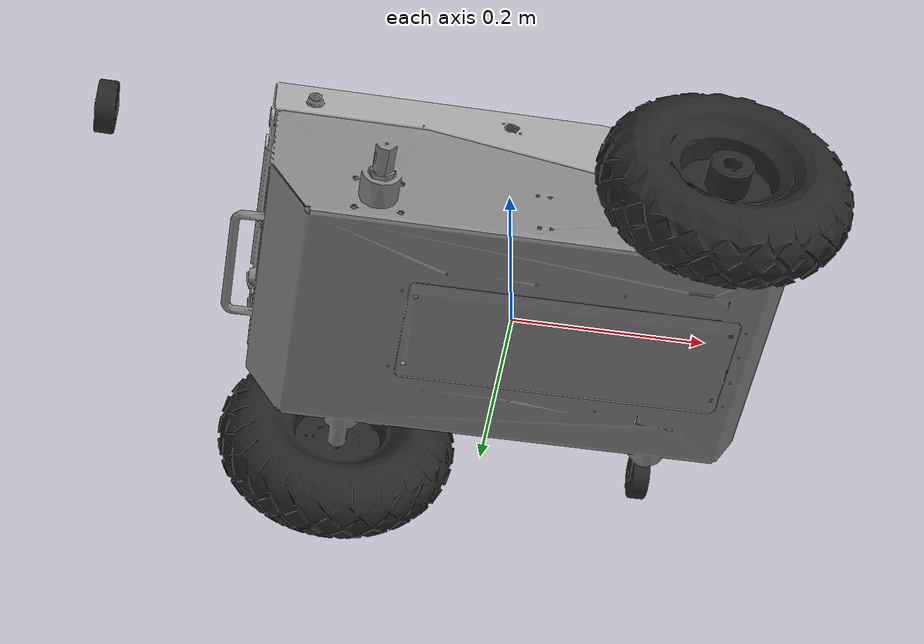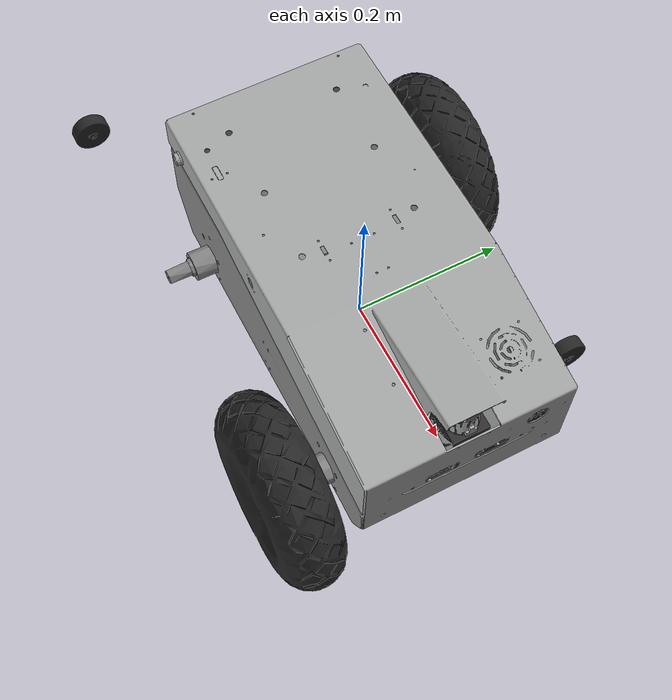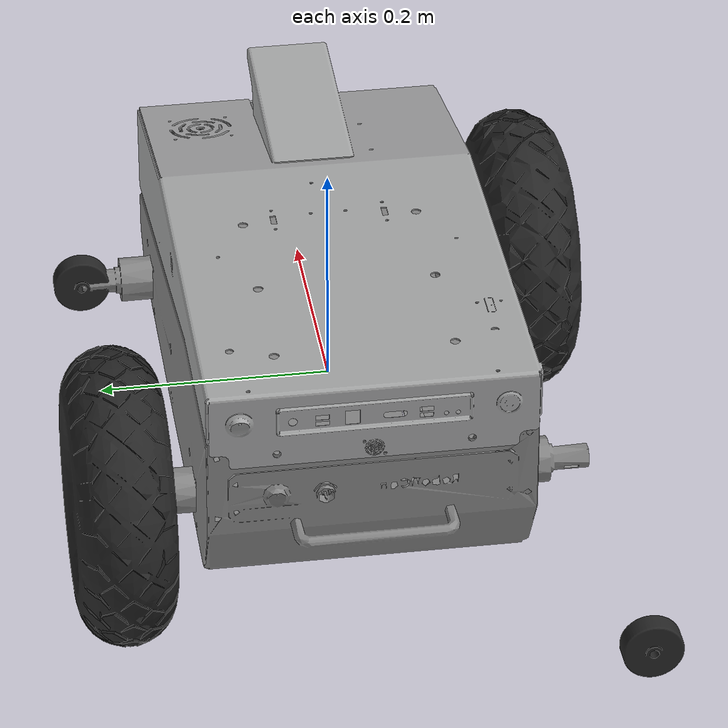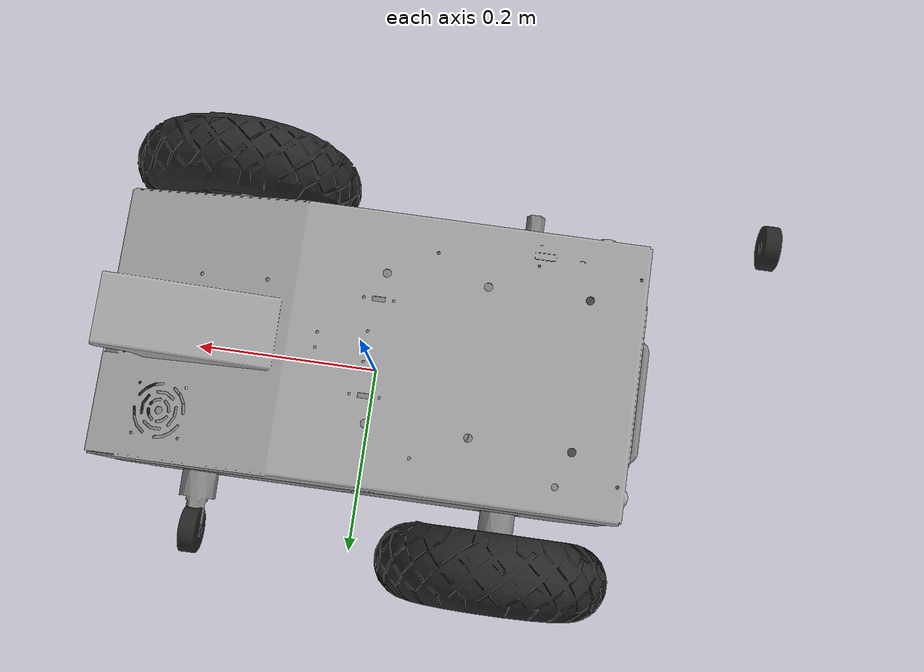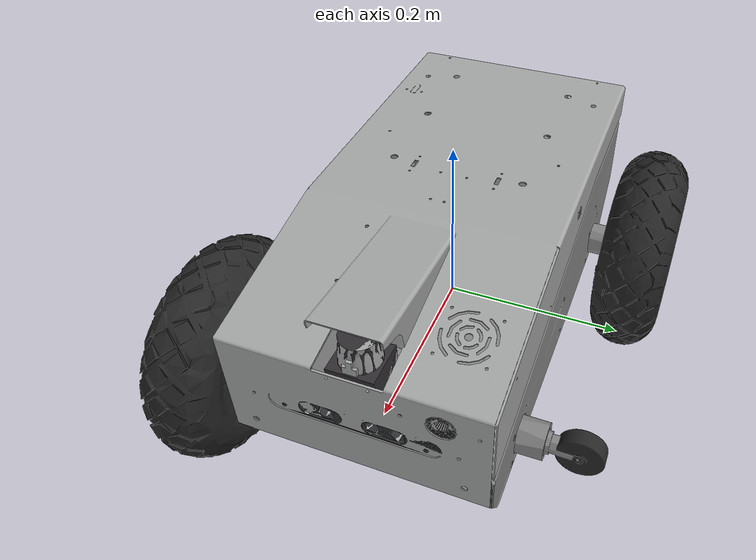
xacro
<?xml version="1.0"?>
<robot xmlns:xacro="http://www.ros.org/wiki/xacro" name="komodo">

	<!-- Load all the links  -->
	<xacro:include filename="$(find robotican_description)/komodo/komodo_base_links/komodo_rover.xacro" />
	<xacro:include filename="$(find robotican_description)/komodo/komodo_base_links/Front_Camera_link.xacro" />
	<xacro:include filename="$(find robotican_description)/komodo/komodo_base_links/Asus_Camera_link.xacro" />
	<xacro:include filename="$(find robotican_description)/komodo/komodo_base_links/Laser_link.xacro" />
	<xacro:include filename="$(find robotican_description)/komodo/komodo_base_links/Left_URF_link.xacro" />
	<xacro:include filename="$(find robotican_description)/komodo/komodo_base_links/Rear_URF_link.xacro" />
	<xacro:include filename="$(find robotican_description)/komodo/komodo_base_links/Right_URF_link.xacro" />
	<xacro:include filename="$(find robotican_description)/komodo/komodo_base_links/sensors_unit_link.xacro" />
	<!--         END         -->

	<!-- Load all the joints -->

	<joint name="Left_URF_joint" type="fixed">
    		<origin xyz="-0.0223133326154785 0.137250000000005 0.138508176066688" rpy="-2.73331335606168E-15 1.59433090848306E-31 1.5707963267949" />
    		<parent link="base_link" />
    		<child link="Left_URF_link" />
    		<axis xyz="-1 0 0" />
  	</joint>

	<joint name="Rear_URF_joint" type="fixed">
    		<origin xyz="-0.267499972183238 0 0.107999999999999" rpy="-6.16297582203915E-33 2.73331335606168E-15 3.14159265358979" />
    		<parent link="base_link" />
    		<child link="Rear_URF_link" />
    		<axis xyz="-1 0 0" />
  	</joint>

	<joint name="Right_URF_joint" type="fixed">
    		<origin xyz="-0.0223133326154785 -0.137249999999995 0.138508176066688" rpy="2.73331335606168E-15 -1.59433090848306E-31 -1.5707963267949" />
    		<parent link="base_link" />
    		<child link="Right_URF_link" />
    		<axis xyz="-1 0 0" />
  	</joint>

	<joint name="Front_Camera_joint" type="fixed">
    		<origin xyz="0.262250027816762 0.0875000000000051 0.100000000000001" rpy="0 0 0" />
    		<parent link="base_link" />
    		<child link="Front_Camera_link" />
    		<axis xyz="0 0 1" />
  	</joint>

	<joint name="Laser_joint" type="fixed">
    		<origin xyz="0.234263427816762 0 0.145827195177237" rpy="-6.93084604642783E-17 -2.62229105359916E-15 5.55111512312578E-17" />
    		<parent link="base_link" />
    		<child link="Laser_link" />
    		<axis xyz="0 0 -1" />
  	</joint>

	<joint name="Asus_Camera_joint" type="fixed">
    		<origin xyz="0.262250027816762 0 0.0635000000000008" rpy="-6.93084604642783E-17 -2.62229105359916E-15 5.55111512312578E-17" />
    		<parent link="base_link" />
    		<child link="Asus_Camera_link" />
    		<axis xyz="-1 0 0" />
  	</joint>
	<!--         END         -->
</robot>

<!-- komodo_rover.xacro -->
<robot name="komodo_rover">
	<!-- Load all the links  -->
	<link name="base_link">
    		<inertial>
      			<origin rpy="0 0 0" xyz="-0.0205330571995271 4.54409684683429E-05 0.00735986203300292" />
      			<mass value="45.0894999160313" />
      			<inertia ixx="0.723503030508731" ixy="-46.8485359152423E-05" ixz="-0.0875564429068847" iyy="1.38127064231828" iyz="11.9695110167269E-05" izz="1.94371448739423" />
    		</inertial>
    		<visual>
      			<origin rpy="0 0 0" xyz="0 0 0" />
			<geometry>
				<mesh filename="package://robotican_description/komodo/meshes/col_base_link.STL" />
			</geometry>
			<material name="">
				<color rgba="0.52941176470588 0.52941176470588 0.52941176470588 1" />
			</material>
    		</visual>
    		<collision>
      			<origin rpy="0 0 0" xyz="-0.065 0 0" />
      			<geometry>
        			<mesh filename="package://robotican_description/komodo/meshes/col_base_link.STL" />
      			</geometry>
    		</collision>
  	</link>

	<link name="FL_Wheel_link">
    		<inertial>
      			<origin rpy="0 0 0" xyz="-0.00160662480262744 -2.59228543311729E-06 1.49951351856364E-05" />
      			<mass value="3.83427523136739" />
      			<inertia ixx="0.0296525525807749" ixy="1.51001277133356E-06" ixz="2.35766660656153E-06" iyy="0.0163749526386264" iyz="1.2254511654214E-06" izz="0.0163720506916083" />
    		</inertial>
    		<visual>
      			<origin rpy="0 0 0" xyz="0 0 0" />
      			<geometry>
        			<mesh filename="package://robotican_description/komodo/meshes/FL_Wheel_link.STL" />
      			</geometry>
      			<material name="">
        			<color rgba="0.15 0.15 0.15 1" />
      			</material>
    		</visual>
    		<collision>
      			<origin rpy="0 1.5 0" xyz="0 0 0" />
      			<geometry>
        			<cylinder length="0.05" radius="0.1" />
      			</geometry>
    		</collision>
  	</link>

	<link name="FR_Wheel_link">
    		<inertial>
      			<origin rpy="0 0 0" xyz="-0.00160662478940524 -2.59227836232889E-06 1.49952129885679E-05" />
      			<mass value="3.8342752339456" />
      			<inertia ixx="0.0296525526023316" ixy="1.51001308635369E-06" ixz="2.3576732629264E-06" iyy="0.0163749526634419" iyz="1.22545882852199E-06" izz="0.0163720506902763" />
    		</inertial>
    		<visual>
      			<origin rpy="0 0 0" xyz="0 0 0" />
      			<geometry>
        			<mesh filename="package://robotican_description/komodo/meshes/FR_Wheel_link.STL" />
      			</geometry>
      			<material name="">
        			<color rgba="0.15 0.15 0.15 1" />
      			</material>
    		</visual>
    		<collision>
      			<origin rpy="0 1.5 0" xyz="0 0 0" />
      			<geometry>
        			<cylinder length="0.05" radius="0.1" />
      			</geometry>
    		</collision>
  	</link>

	<link name="RL_Wheel_link">
    		<inertial>
      			<origin rpy="0 0 0" xyz="-0.00160662477936549 -2.59222765522371E-06 1.49952106412736E-05" />
      			<mass value="3.83427523542708" />
      			<inertia ixx="0.0296525526119397" ixy="1.5100179619978E-06" ixz="2.35767335983606E-06" iyy="0.0163749526769378" iyz="1.22544931791974E-06" izz="0.0163720506885898" />
    		</inertial>
    		<visual>
      			<origin rpy="0 0 0" xyz="0 0 0" />
      			<geometry>
        			<mesh filename="package://robotican_description/komodo/meshes/RL_Wheel_link.STL" />
      			</geometry>
      			<material name="">
        			<color rgba="0.15 0.15 0.15 1" />
      			</material>
    		</visual>
   	 	<collision>
      			<origin rpy="0 1.5 0" xyz="0 0 0" />
      			<geometry>
        			<cylinder length="0.05" radius="0.1" />
      			</geometry>
    		</collision>
  	</link>

	<link name="RR_Wheel_link">
    		<inertial>
      			<origin rpy="0 0 0" xyz="-0.00160662476834383 -2.59238516814309E-06 1.49950507030127E-05" />
      			<mass value="3.83427523968864" />
      			<inertia ixx="0.0296525526652264" ixy="1.5100019082583E-06" ixz="2.35765651707649E-06" iyy="0.0163749526901628" iyz="1.22544631738128E-06" izz="0.0163720507270359" />
    		</inertial>
    		<visual>
      			<origin rpy="0 0 0" xyz="0 0 0" />
      			<geometry>
        			<mesh filename="package://robotican_description/komodo/meshes/RR_Wheel_link.STL" />
      			</geometry>
      			<material name="">
        			<color rgba="0.15 0.15 0.15 1" />
      			</material>
    		</visual>
    		<collision>
      			<origin rpy="0 1.5 0" xyz="0 0 0" />
      			<geometry>
        			<cylinder length="0.05" radius="0.1" />
      			</geometry>
    		</collision>
  	</link>
	<!--         END         -->

	<!-- Load all the joints -->
	<joint name="FR_Wheel_joint" type="continuous">
    		<origin xyz="0.173999999999995 -0.2009 0" rpy="2.62229105359916E-15 6.9308460464278E-17 1.5707963267949" />
    		<parent link="base_link" />
    		<child link="FR_Wheel_link" />
    		<axis xyz="1 0 0" />
  	</joint>

	<joint name="FL_Wheel_joint" type="continuous">
    		<origin xyz="0.173999999999995 0.2009 0" rpy="-2.62229105359916E-15 6.93084604642783E-17 -1.5707963267949" />
    		<parent link="base_link" />
    		<child link="FL_Wheel_link" />
    		<axis xyz="-1 0 0" />
  	</joint>

	<joint name="RR_Wheel_joint" type="continuous">
    		<origin xyz="-0.156000000000005 -0.2009 0" rpy="2.62229105359916E-15 -1.59433090848306E-31 1.5707963267949" />
    		<parent link="base_link" />
    		<child link="RR_Wheel_link" />
    		<axis xyz="1 0 0" />
  	</joint>

	<joint name="RL_Wheel_joint" type="continuous">
    		<origin xyz="-0.156000000000005 0.2009 0" rpy="-2.62229105359916E-15 -5.57680208627196E-32 -1.5707963267949" />
    		<parent link="base_link" />
    		<child link="RL_Wheel_link" />
    		<axis xyz="-1 0 0" />
  	</joint>
	<!--         END         -->
</robot>

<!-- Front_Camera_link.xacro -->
<robot name="Front_Camera_link"><link name="Front_Camera_link">
    <inertial>
      <origin rpy="0 0 0" xyz="3.63553471578737E-06 0.000213443852909154 -0.00979905092954431" />
      <mass value="0.0346828331927876" />
      <inertia ixx="6.28790547336199E-06" ixy="-2.06834494924545E-09" ixz="1.17994816105049E-09" iyy="6.08020816375924E-06" iyz="3.61787794067701E-08" izz="9.95214453956241E-06" />
    </inertial>
    <visual>
      <origin rpy="-1.57079632649567 1.57079632649567 -1.57079632649567" xyz="0 0 0" />
      <geometry>
        <mesh filename="package://ric_description/komodo/meshes/Front_Camera_link.STL" />
      </geometry>
      <material name="">
        <color rgba="0.1 0.1 0.1 1" />
      </material>
    </visual>
    <collision>
      <origin rpy="1.57 0 0" xyz="0 0 0" />
      <geometry>
        <mesh filename="package://ric_description/komodo/meshes/Front_Camera_link.STL" />
      </geometry>
    </collision>
  </link>
  </robot>

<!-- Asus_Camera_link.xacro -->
<robot name="Asus_Camera_link"><link name="Asus_Camera_link">
    <inertial>
      <origin rpy="0 0 0" xyz="-0.0187798361475048 -0.000287133366772307 -0.000201032384153296" />
      <mass value="0.150306955527936" />
      <inertia ixx="0.00039928218741962" ixy="-5.34870767194659E-07" ixz="-1.37242873517293E-08" iyy="2.36182089627434E-05" iyz="-8.67618422000016E-09" izz="0.000406064964123578" />
    </inertial>
    <visual>
      <origin rpy="0 0 0" xyz="0 0 0" />
      <geometry>
        <mesh filename="package://ric_description/komodo/meshes/Asus_Camera_link.STL" />
      </geometry>
      <material name="">
        <color rgba="0.1792156862745098 0.1819607843137255 0.1933333333333333 1" />
      </material>
    </visual>
    <collision>
      <origin rpy="0 0 0" xyz="0 0 0" />
      <geometry>
        <mesh filename="package://ric_description/komodo/meshes/Asus_Camera_link.STL" />
      </geometry>
    </collision>
  </link>
  </robot>

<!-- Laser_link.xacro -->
<robot name="Laser_link"><link name="Laser_link">
    <inertial>
      <origin rpy="0 0 0" xyz="5.67786090348299E-05 -6.35639788811446E-05 -0.0320034700075499" />
      <mass value="0.133672626323353" />
      <inertia ixx="7.01753800311366E-05" ixy="-5.24162580339348E-08" ixz="1.6420597550453E-07" iyy="7.0476938858621E-05" iyz="1.92324838956078E-07" izz="4.61464878783427E-05" />
    </inertial>
    <visual>
      <origin rpy="0 0 0" xyz="0 0 0" />
      <geometry>
        <mesh filename="package://ric_description/komodo/meshes/Laser_link.STL" />
      </geometry>
      <material name="">
        <color rgba="0.192156862745098 0.1819607843137255 0.1933333333333333 1" />
      </material>
    </visual>
    <collision>
      <origin rpy="0 0 0" xyz="0 0 0" />
      <geometry>
        <mesh filename="package://ric_description/komodo/meshes/Laser_link.STL" />
      </geometry>
    </collision>
  </link>
  </robot>

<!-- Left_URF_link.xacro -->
<robot name="Left_URF_link"><link name="Left_URF_link">
    <inertial>
      <origin rpy="0 0 0" xyz="-0.00942258060476561 1.68888278492922E-05 -0.000193183712129175" />
      <mass value="0.00277487854391404" />
      <inertia ixx="1.28314681514111E-07" ixy="-1.54585356342896E-10" ixz="3.11030599725484E-09" iyy="1.18940672500039E-07" iyz="4.35265830364889E-09" izz="1.28434121553121E-07" />
    </inertial>
    <visual>
      <origin rpy="0 0 0" xyz="0 0 0" />
      <geometry>
        <mesh filename="package://robotican_description/komodo/meshes/Left_URF_link.STL" />
      </geometry>
      <material name="">
        <color rgba="0.752941176470588 0.752941176470588 0.752941176470588 1" />
      </material>
    </visual>
    <collision>
      <origin rpy="0 0 0" xyz="0 0 0" />
      <geometry>
        <mesh filename="package://robotican_description/komodo/meshes/Left_URF_link.STL" />
      </geometry>
    </collision>
  </link>
  </robot>

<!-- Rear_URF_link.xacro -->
<robot name="Rear_URF_link"><link name="Rear_URF_link">
    <inertial>
      <origin rpy="0 0 0" xyz="-0.00942258060476558 1.68888278491873E-05 -0.000193183712129189" />
      <mass value="0.0027748785439141" />
      <inertia ixx="1.28314681514116E-07" ixy="-1.54585356343498E-10" ixz="3.1103059972555E-09" iyy="1.18940672500041E-07" iyz="4.35265830364838E-09" izz="1.28434121553125E-07" />
    </inertial>
    <visual>
      <origin rpy="0 0 0" xyz="0 0 0" />
      <geometry>
        <mesh filename="package://robotican_description/komodo/meshes/Rear_URF_link.STL" />
      </geometry>
      <material name="">
        <color rgba="0.752941176470588 0.752941176470588 0.752941176470588 1" />
      </material>
    </visual>
    <collision>
      <origin rpy="0 0 0" xyz="0 0 0" />
      <geometry>
        <mesh filename="package://robotican_description/komodo/meshes/Rear_URF_link.STL" />
      </geometry>
    </collision>
  </link>
  </robot>

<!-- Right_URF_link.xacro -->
<robot name="Right_URF_link"><link name="Right_URF_link">
    <inertial>
      <origin rpy="0 0 0" xyz="-0.00942258060476561 1.68888278493408E-05 -0.000193183712129202" />
      <mass value="0.00277487854391409" />
      <inertia ixx="1.28314681514115E-07" ixy="-1.54585356342962E-10" ixz="3.11030599725548E-09" iyy="1.18940672500041E-07" iyz="4.3526583036484E-09" izz="1.28434121553124E-07" />
    </inertial>
    <visual>
      <origin rpy="0 0 0" xyz="0 0 0" />
      <geometry>
        <mesh filename="package://ric_description/komodo/meshes/Right_URF_link.STL" />
      </geometry>
      <material name="">
        <color rgba="0.752941176470588 0.752941176470588 0.752941176470588 1" />
      </material>
    </visual>
    <collision>
      <origin rpy="0 0 0" xyz="0 0 0" />
      <geometry>
        <mesh filename="package://ric_description/komodo/meshes/Right_URF_link.STL" />
      </geometry>
    </collision>
  </link>
  </robot>

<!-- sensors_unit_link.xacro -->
<robot name="sensors_unit_link"><link name="sensors_unit_link">
    <inertial>
      <origin rpy="0 0 0" xyz="0.0414414719218708 -0.000373289194023478 0.0507806551833217" />
      <mass value="3.00493541386534" />
      <inertia ixx="0.0317419196615914" ixy="-0.000328957251382255" ixz="-0.0101477531293138" iyy="0.0944166881470797" iyz="2.04069229359132E-05" izz="0.116969738863327" />
    </inertial>
    <visual>
      <origin rpy="0 0 0" xyz="0 0 0" />
      <geometry>
        <mesh filename="package://robotican_description/komodo/meshes/sensors_unit_link.STL" />
      </geometry>
      <material name="">
        <color rgba="0.6509803921568627 0.6537254901960784 0.656078431372549 1" />
      </material>
    </visual>
    <collision>
      <origin rpy="0 0 0" xyz="0 0 0" />
      <geometry>
        <mesh filename="package://robotican_description/komodo/meshes/sensors_unit_link.STL" />
      </geometry>
    </collision>
  </link>
	<joint name="sensors_unit_joint" type="fixed">
    		<origin xyz="-0.00199997218323841 0 0.0835000000000001" rpy="-1.59433090848306E-31 -2.62229105359916E-15 5.55111512312578E-17" />
    		<parent link="base_link" />
    		<child link="sensors_unit_link" />
    		<axis xyz="1 0 0" />
  	</joint>
  </robot>
